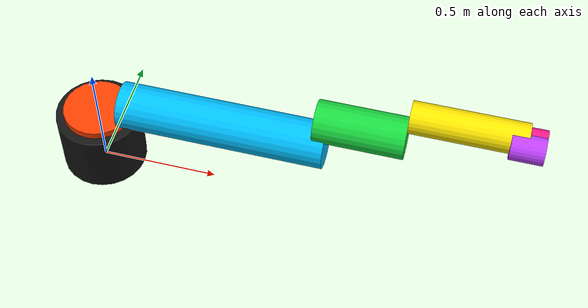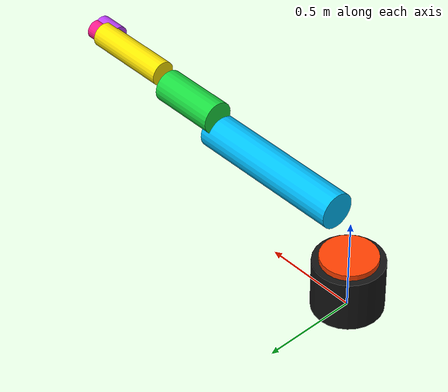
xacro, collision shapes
<?xml version="1.0" encoding="UTF-8"?>
<robot xmlns:xacro="http://ros.org/wiki/xacro" name="kr6_r1820_arc_hw">
  <xacro:include filename="$(find kuka_cybertech_support)/urdf/kr6_r1820_arc_hw_macro.xacro"/>
  <xacro:include filename="$(find kuka_cybertech_support)/urdf/kr_cybertech_ros2_control_macro.xacro"/>

  <xacro:arg name="driver_version" default="eki_rsi"/>
  <xacro:arg name="mode" default="hardware"/>
  <xacro:arg name="use_gpio" default="false"/>
  <xacro:arg name="roundtrip_time" default="0"/>
  <xacro:arg name="client_ip" default="0.0.0.0"/>
  <xacro:arg name="client_port" default="59152"/>
  <xacro:arg name="mxa_client_port" default="1337"/>
  <xacro:arg name="controller_ip" default="0.0.0.0"/>
  <xacro:arg name="verify_robot_model" default="false"/>
  <xacro:arg name="prefix" default=""/>
  <xacro:arg name="x" default="0"/>
  <xacro:arg name="y" default="0"/>
  <xacro:arg name="z" default="0"/>
  <xacro:arg name="roll" default="0"/>
  <xacro:arg name="pitch" default="0"/>
  <xacro:arg name="yaw" default="0"/>

  <xacro:kuka_cybertech_ros2_control name="$(arg prefix)kr6_r1820_arc_hw" driver_version="$(arg driver_version)" client_ip="$(arg client_ip)" client_port="$(arg client_port)" mxa_client_port="$(arg mxa_client_port)" controller_ip="$(arg controller_ip)" prefix="$(arg prefix)" mode="$(arg mode)" use_gpio="$(arg use_gpio)" roundtrip_time="$(arg roundtrip_time)" verify_robot_model="$(arg verify_robot_model)">
    <ext_axes_ros2_control_joints/>
  </xacro:kuka_cybertech_ros2_control>

  <link name="world"/>
  <xacro:kuka_kr6_r1820_arc_hw_robot prefix="$(arg prefix)" package_name="kuka_cybertech_support"/>

  <joint name="$(arg prefix)world-base_link" type="fixed">
    <parent link="world"/>
    <child link="$(arg prefix)base_link"/>
    <origin xyz="$(arg x) $(arg y) $(arg z)" rpy="$(arg roll) $(arg pitch) $(arg yaw)"/>
  </joint>
</robot>

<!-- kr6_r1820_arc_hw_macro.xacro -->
<robot xmlns:xacro="http://www.ros.org/wiki/xacro" name="kr6_r1820_arc_hw">
  <xacro:macro name="kuka_kr6_r1820_arc_hw_robot" params="prefix package_name">
    <xacro:property name="mesh_path" value="package://${package_name}/meshes/kr6_r1820_arc_hw/visual"/>
    <xacro:property name="mesh_scale" value="0.001 0.001 0.001"/>

    <material name="kuka_orange">
      <color rgba="1.0 0.45 0.0 1.0"/>
    </material>
    <material name="kuka_dark">
      <color rgba="0.08 0.08 0.08 1.0"/>
    </material>
    <material name="debug_link_1">
      <color rgba="1.0 0.25 0.0 1.0"/>
    </material>
    <material name="debug_link_2">
      <color rgba="0.0 0.75 1.0 1.0"/>
    </material>
    <material name="debug_link_3">
      <color rgba="0.1 0.85 0.25 1.0"/>
    </material>
    <material name="debug_link_4">
      <color rgba="1.0 0.9 0.0 1.0"/>
    </material>
    <material name="debug_link_5">
      <color rgba="0.75 0.25 1.0 1.0"/>
    </material>
    <material name="debug_link_6">
      <color rgba="1.0 0.1 0.55 1.0"/>
    </material>

    <link name="${prefix}base"/>
    <link name="${prefix}base_link">
      <visual>
        <origin xyz="0 0 0" rpy="0 0 0"/>
        <geometry>
          <mesh filename="${mesh_path}/base_link.stl" scale="${mesh_scale}"/>
        </geometry>
        <material name="kuka_dark"/>
      </visual>
      <collision>
        <origin xyz="0 0 0.14" rpy="0 0 0"/>
        <geometry>
          <cylinder radius="0.18" length="0.28"/>
        </geometry>
      </collision>
      <inertial>
        <mass value="45.0"/>
        <origin xyz="0 0 0.14" rpy="0 0 0"/>
        <inertia ixx="1.0" ixy="0.0" ixz="0.0" iyy="1.0" iyz="0.0" izz="1.0"/>
      </inertial>
    </link>

    <link name="${prefix}link_1">
      <visual>
        <origin xyz="0 0 0" rpy="0 0 0"/>
        <geometry>
          <mesh filename="${mesh_path}/link_1.stl" scale="${mesh_scale}"/>
        </geometry>
        <material name="debug_link_1"/>
      </visual>
      <collision>
        <origin xyz="0 0 0.14" rpy="0 0 0"/>
        <geometry>
          <cylinder radius="0.145" length="0.28"/>
        </geometry>
      </collision>
      <inertial>
        <mass value="55.0"/>
        <origin xyz="0 0 0.14" rpy="0 0 0"/>
        <inertia ixx="1.0" ixy="0.0" ixz="0.0" iyy="1.0" iyz="0.0" izz="1.0"/>
      </inertial>
    </link>

    <link name="${prefix}link_2">
      <visual>
        <origin xyz="0 0 0" rpy="0 0 0"/>
        <geometry>
          <mesh filename="${mesh_path}/link_2.stl" scale="${mesh_scale}"/>
        </geometry>
        <material name="debug_link_2"/>
      </visual>
      <collision>
        <origin xyz="0.425 0 0" rpy="0 1.5707963267948966 0"/>
        <geometry>
          <cylinder radius="0.095" length="0.85"/>
        </geometry>
      </collision>
      <inertial>
        <mass value="48.0"/>
        <origin xyz="0.425 0 0" rpy="0 0 0"/>
        <inertia ixx="1.0" ixy="0.0" ixz="0.0" iyy="3.0" iyz="0.0" izz="3.0"/>
      </inertial>
    </link>

    <link name="${prefix}link_3">
      <visual>
        <origin xyz="0 0 0" rpy="0 0 0"/>
        <geometry>
          <mesh filename="${mesh_path}/link_3.stl" scale="${mesh_scale}"/>
        </geometry>
        <material name="debug_link_3"/>
      </visual>
      <collision>
        <origin xyz="0.18 -0.11 0.04" rpy="0 1.5707963267948966 0"/>
        <geometry>
          <cylinder radius="0.085" length="0.36"/>
        </geometry>
      </collision>
      <inertial>
        <mass value="30.0"/>
        <origin xyz="0.18 -0.11 0.04" rpy="0 0 0"/>
        <inertia ixx="0.7" ixy="0.0" ixz="0.0" iyy="1.2" iyz="0.0" izz="1.2"/>
      </inertial>
    </link>

    <link name="${prefix}link_4">
      <visual>
        <origin xyz="0 0 0" rpy="0 0 0"/>
        <geometry>
          <mesh filename="${mesh_path}/link_4.stl" scale="${mesh_scale}"/>
        </geometry>
        <material name="debug_link_4"/>
      </visual>
      <collision>
        <origin xyz="0 0 -0.225" rpy="0 0 0"/>
        <geometry>
          <cylinder radius="0.065" length="0.45"/>
        </geometry>
      </collision>
      <inertial>
        <mass value="12.0"/>
        <origin xyz="0 0 -0.225" rpy="0 0 0"/>
        <inertia ixx="0.2" ixy="0.0" ixz="0.0" iyy="0.2" iyz="0.0" izz="0.1"/>
      </inertial>
    </link>

    <link name="${prefix}link_5">
      <visual>
        <origin xyz="0 0 0" rpy="0 0 0"/>
        <geometry>
          <mesh filename="${mesh_path}/link_5.stl" scale="${mesh_scale}"/>
        </geometry>
        <material name="debug_link_5"/>
      </visual>
      <collision>
        <origin xyz="0 0 0" rpy="0 1.5707963267948966 0"/>
        <geometry>
          <cylinder radius="0.055" length="0.13"/>
        </geometry>
      </collision>
      <inertial>
        <mass value="4.0"/>
        <origin xyz="0 0 0" rpy="0 0 0"/>
        <inertia ixx="0.02" ixy="0.0" ixz="0.0" iyy="0.02" iyz="0.0" izz="0.02"/>
      </inertial>
    </link>

    <link name="${prefix}link_6">
      <visual>
        <origin xyz="0 0 0" rpy="0 0 0"/>
        <geometry>
          <mesh filename="${mesh_path}/link_6.stl" scale="${mesh_scale}"/>
        </geometry>
        <material name="debug_link_6"/>
      </visual>
      <collision>
        <origin xyz="0 0 0.035" rpy="0 0 0"/>
        <geometry>
          <cylinder radius="0.05" length="0.07"/>
        </geometry>
      </collision>
      <inertial>
        <mass value="2.0"/>
        <origin xyz="0 0 0.035" rpy="0 0 0"/>
        <inertia ixx="0.01" ixy="0.0" ixz="0.0" iyy="0.01" iyz="0.0" izz="0.01"/>
      </inertial>
    </link>

    <link name="${prefix}flange"/>
    <link name="${prefix}tool0"/>

    <joint name="${prefix}base_link-base" type="fixed">
      <parent link="${prefix}base_link"/>
      <child link="${prefix}base"/>
    </joint>
    <joint name="${prefix}joint_1" type="revolute">
      <parent link="${prefix}base_link"/>
      <child link="${prefix}link_1"/>
      <origin xyz="0 0 0.31" rpy="3.141592653589793 0 0"/>
      <axis xyz="0 0 1"/>
      <limit lower="-2.9670597283903604" upper="2.9670597283903604" velocity="3.839724354387525" effort="2000"/>
    </joint>
    <joint name="${prefix}joint_2" type="revolute">
      <parent link="${prefix}link_1"/>
      <child link="${prefix}link_2"/>
      <origin xyz="0.15 0.064 -0.14" rpy="1.5707963267948966 0 0"/>
      <axis xyz="0 0 1"/>
      <limit lower="-3.2288591161895095" upper="1.1344640137963142" velocity="3.1066860685499065" effort="1750"/>
    </joint>
    <joint name="${prefix}joint_3" type="revolute">
      <parent link="${prefix}link_2"/>
      <child link="${prefix}link_3"/>
      <origin xyz="0.80 0 -0.012" rpy="0 0 0"/>
      <axis xyz="0 0 1"/>
      <limit lower="-2.0943951023931953" upper="3.141592653589793" velocity="4.71238898038469" effort="900"/>
    </joint>
    <joint name="${prefix}joint_4" type="revolute">
      <parent link="${prefix}link_3"/>
      <child link="${prefix}link_4"/>
      <origin xyz="0.36 -0.20 0.075" rpy="1.5707963267948966 0 -1.5707963267948966"/>
      <axis xyz="0 0 1"/>
      <limit lower="-2.8797932657906435" upper="2.8797932657906435" velocity="7.504915783575617" effort="55"/>
    </joint>
    <joint name="${prefix}joint_5" type="revolute">
      <parent link="${prefix}link_4"/>
      <child link="${prefix}link_5"/>
      <origin xyz="0 -0.041 -0.45" rpy="0 1.5707963267948966 1.5707963267948966"/>
      <axis xyz="0 0 1"/>
      <limit lower="-2.007128639793479" upper="2.443460952792061" velocity="7.504915783575617" effort="40"/>
    </joint>
    <joint name="${prefix}joint_6" type="revolute">
      <parent link="${prefix}link_5"/>
      <child link="${prefix}link_6"/>
      <origin xyz="0.066 0 0.041" rpy="1.5707963267948966 0 -1.5707963267948966"/>
      <axis xyz="0 0 1"/>
      <limit lower="-6.1086523819801535" upper="6.1086523819801535" velocity="10.995574287564276" effort="40"/>
    </joint>
    <joint name="${prefix}link6-flange" type="fixed">
      <parent link="${prefix}link_6"/>
      <child link="${prefix}flange"/>
      <origin xyz="0 0 -0.0135" rpy="0 1.5707963267948966 0"/>
    </joint>
    <joint name="${prefix}link6-tool0" type="fixed">
      <parent link="${prefix}link_6"/>
      <child link="${prefix}tool0"/>
      <origin xyz="0 0 -0.0135" rpy="3.141592653589793 0 3.141592653589793"/>
    </joint>
  </xacro:macro>
</robot>
